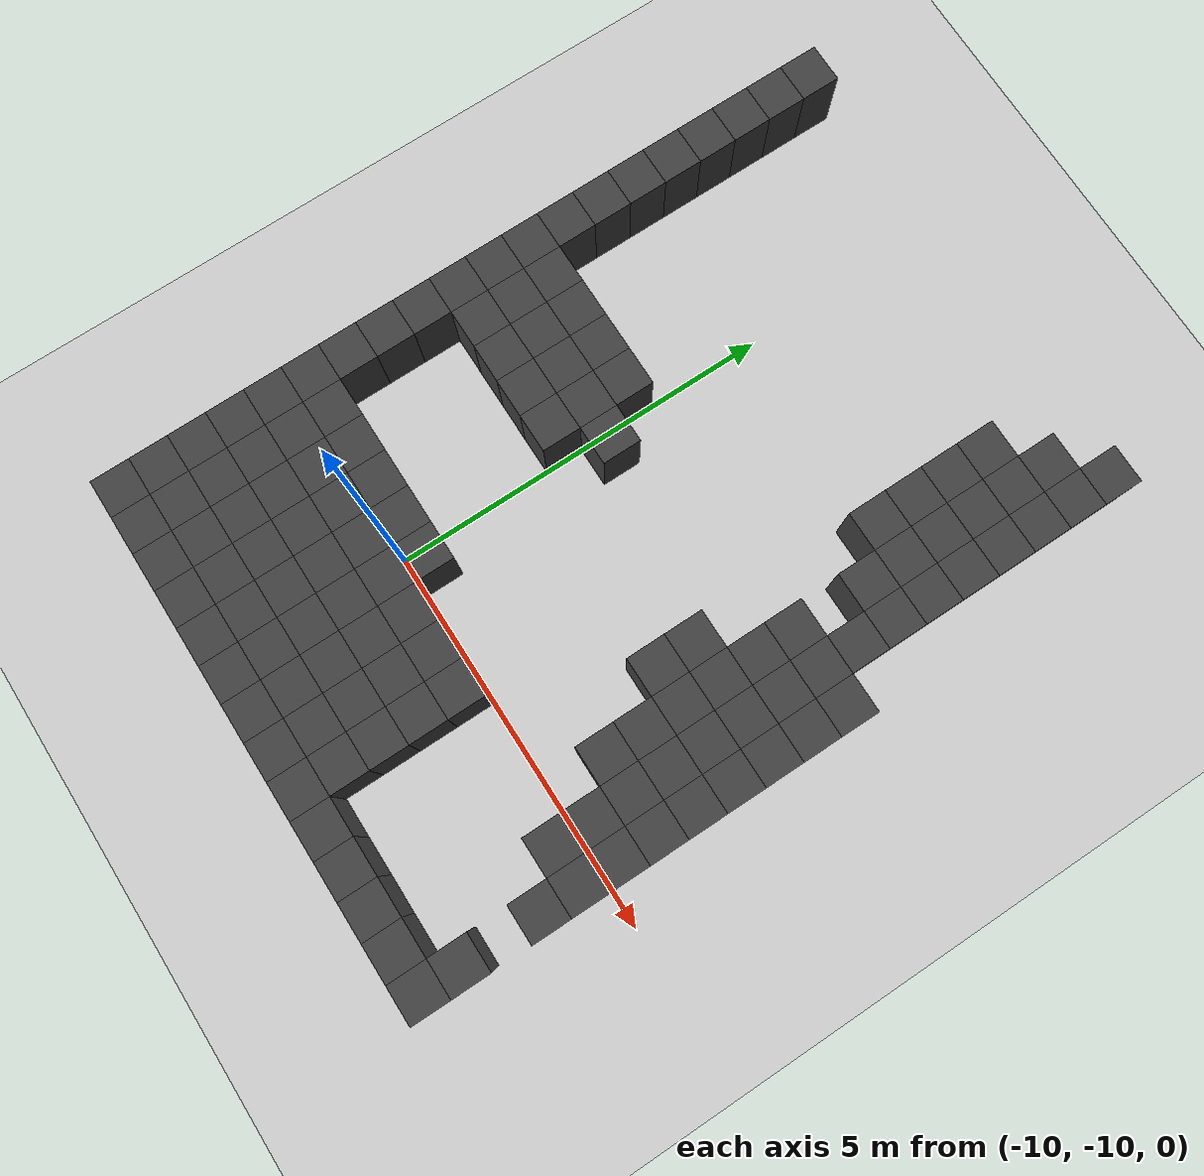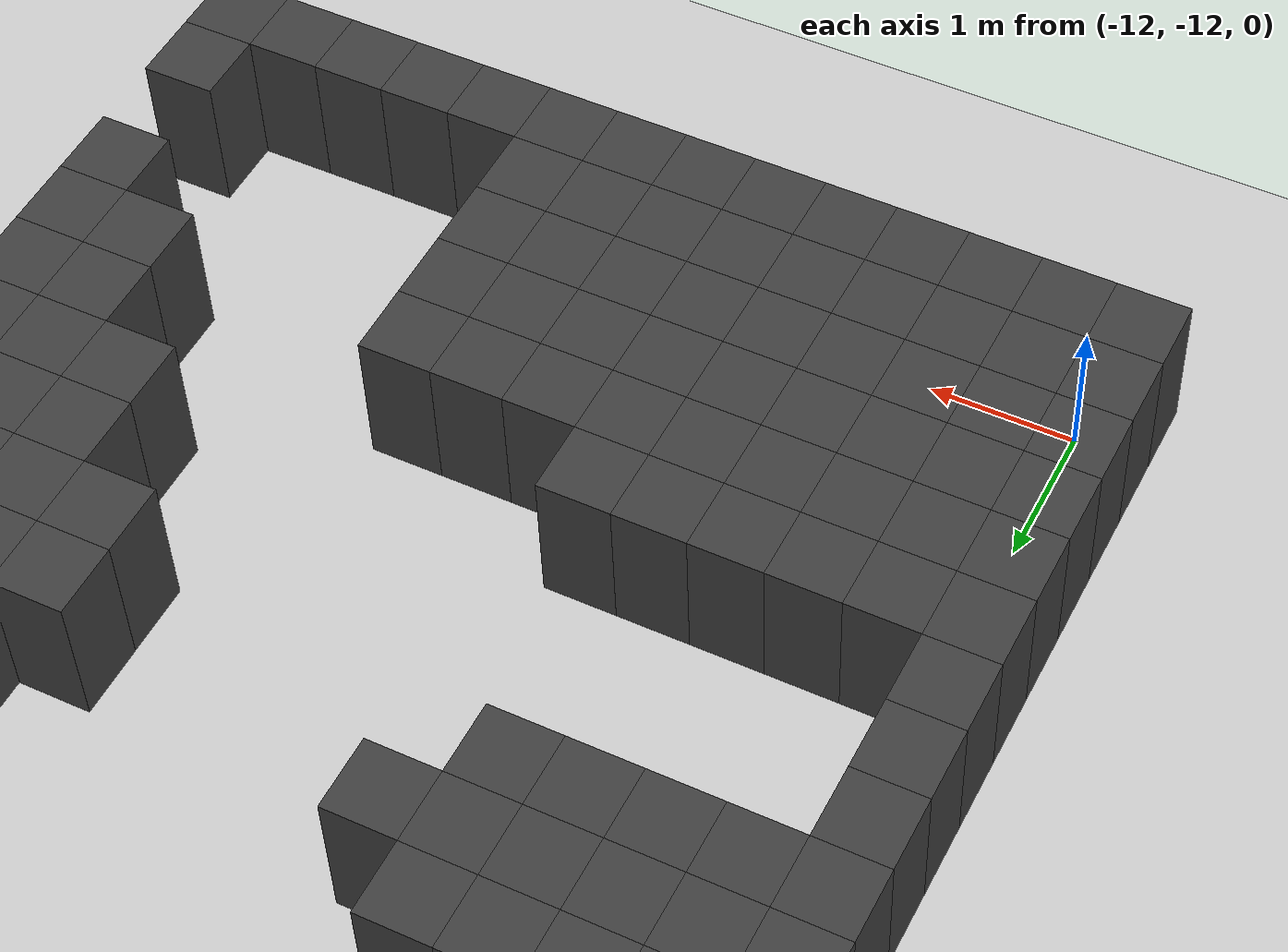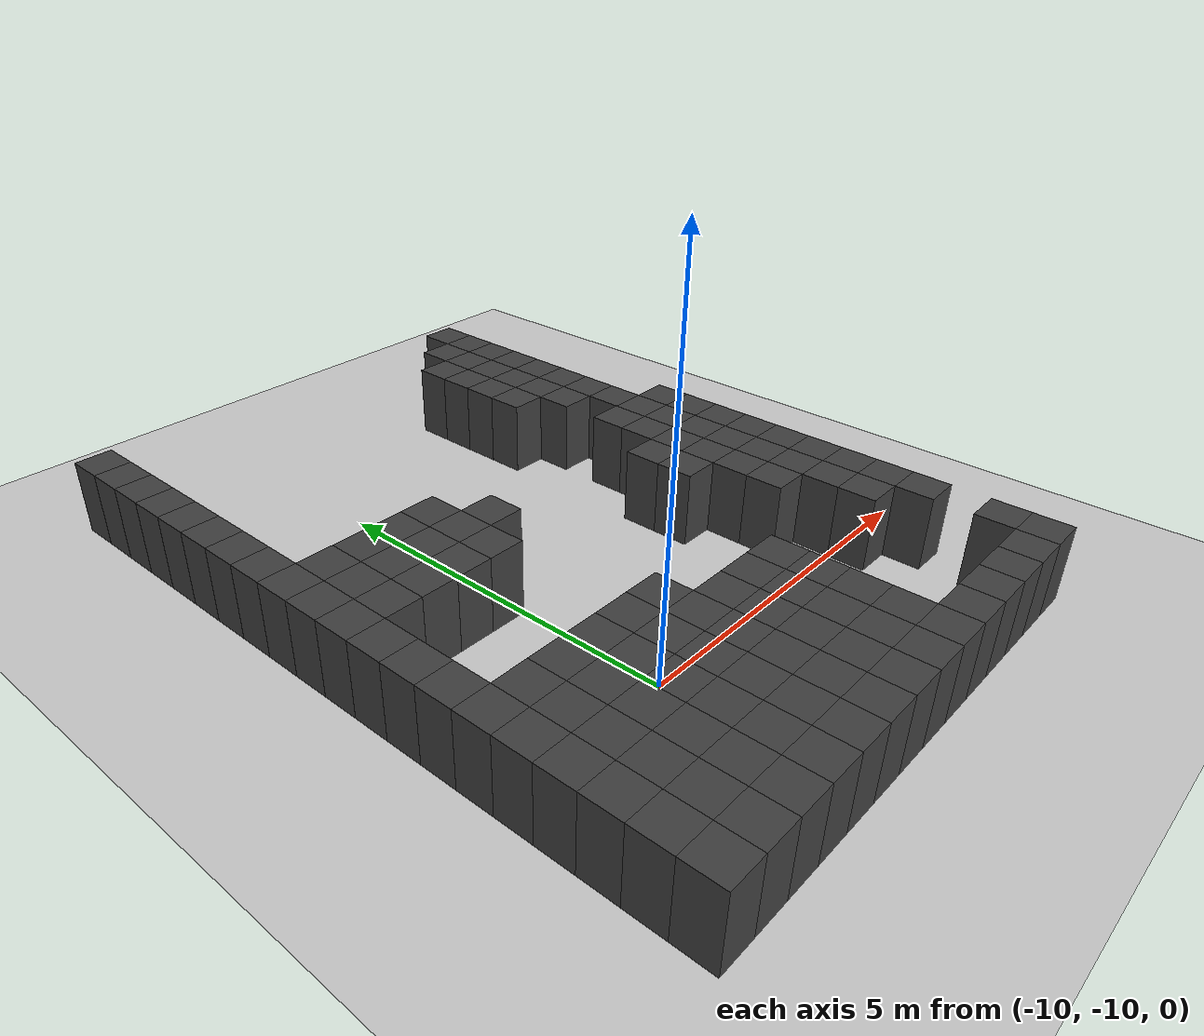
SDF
<sdf version="1.7">
 <world name="map_9544">
  <model name="ground_plane">
   <static>true</static>
   <link name="link">
    <collision name="collision">
     <geometry><plane><normal>0 0 1</normal><size>200 200</size></plane></geometry>
    </collision>
    <visual name="visual">
     <geometry><plane><normal>0 0 1</normal><size>200 200</size></plane></geometry>
     <material><ambient>0.8 0.8 0.8 1</ambient><diffuse>0.8 0.8 0.8 1</diffuse></material>
    </visual>
   </link>
  </model>
  <model name="maze_environment">
   <static>true</static>
   <link name="wall_499">
    <pose>-12.250 -2.750 0.500 0 0 0</pose>
    <collision name="col"><geometry><box><size>0.5 0.5 1.0</size></box></geometry></collision>
    <visual name="vis">
     <geometry><box><size>0.5 0.5 1.0</size></box></geometry>
     <material><ambient>0.15 0.15 0.15 1</ambient><diffuse>0.25 0.25 0.25 1</diffuse></material>
    </visual>
   </link>
   <link name="wall_500">
    <pose>-6.250 -2.750 0.500 0 0 0</pose>
    <collision name="col"><geometry><box><size>0.5 0.5 1.0</size></box></geometry></collision>
    <visual name="vis">
     <geometry><box><size>0.5 0.5 1.0</size></box></geometry>
     <material><ambient>0.15 0.15 0.15 1</ambient><diffuse>0.25 0.25 0.25 1</diffuse></material>
    </visual>
   </link>
   <link name="wall_516">
    <pose>-12.250 -3.250 0.500 0 0 0</pose>
    <collision name="col"><geometry><box><size>0.5 0.5 1.0</size></box></geometry></collision>
    <visual name="vis">
     <geometry><box><size>0.5 0.5 1.0</size></box></geometry>
     <material><ambient>0.15 0.15 0.15 1</ambient><diffuse>0.25 0.25 0.25 1</diffuse></material>
    </visual>
   </link>
   <link name="wall_517">
    <pose>-6.750 -3.250 0.500 0 0 0</pose>
    <collision name="col"><geometry><box><size>0.5 0.5 1.0</size></box></geometry></collision>
    <visual name="vis">
     <geometry><box><size>0.5 0.5 1.0</size></box></geometry>
     <material><ambient>0.15 0.15 0.15 1</ambient><diffuse>0.25 0.25 0.25 1</diffuse></material>
    </visual>
   </link>
   <link name="wall_518">
    <pose>-6.250 -3.250 0.500 0 0 0</pose>
    <collision name="col"><geometry><box><size>0.5 0.5 1.0</size></box></geometry></collision>
    <visual name="vis">
     <geometry><box><size>0.5 0.5 1.0</size></box></geometry>
     <material><ambient>0.15 0.15 0.15 1</ambient><diffuse>0.25 0.25 0.25 1</diffuse></material>
    </visual>
   </link>
   <link name="wall_537">
    <pose>-12.250 -3.750 0.500 0 0 0</pose>
    <collision name="col"><geometry><box><size>0.5 0.5 1.0</size></box></geometry></collision>
    <visual name="vis">
     <geometry><box><size>0.5 0.5 1.0</size></box></geometry>
     <material><ambient>0.15 0.15 0.15 1</ambient><diffuse>0.25 0.25 0.25 1</diffuse></material>
    </visual>
   </link>
   <link name="wall_538">
    <pose>-7.250 -3.750 0.500 0 0 0</pose>
    <collision name="col"><geometry><box><size>0.5 0.5 1.0</size></box></geometry></collision>
    <visual name="vis">
     <geometry><box><size>0.5 0.5 1.0</size></box></geometry>
     <material><ambient>0.15 0.15 0.15 1</ambient><diffuse>0.25 0.25 0.25 1</diffuse></material>
    </visual>
   </link>
   <link name="wall_539">
    <pose>-6.750 -3.750 0.500 0 0 0</pose>
    <collision name="col"><geometry><box><size>0.5 0.5 1.0</size></box></geometry></collision>
    <visual name="vis">
     <geometry><box><size>0.5 0.5 1.0</size></box></geometry>
     <material><ambient>0.15 0.15 0.15 1</ambient><diffuse>0.25 0.25 0.25 1</diffuse></material>
    </visual>
   </link>
   <link name="wall_540">
    <pose>-6.250 -3.750 0.500 0 0 0</pose>
    <collision name="col"><geometry><box><size>0.5 0.5 1.0</size></box></geometry></collision>
    <visual name="vis">
     <geometry><box><size>0.5 0.5 1.0</size></box></geometry>
     <material><ambient>0.15 0.15 0.15 1</ambient><diffuse>0.25 0.25 0.25 1</diffuse></material>
    </visual>
   </link>
   <link name="wall_560">
    <pose>-12.250 -4.250 0.500 0 0 0</pose>
    <collision name="col"><geometry><box><size>0.5 0.5 1.0</size></box></geometry></collision>
    <visual name="vis">
     <geometry><box><size>0.5 0.5 1.0</size></box></geometry>
     <material><ambient>0.15 0.15 0.15 1</ambient><diffuse>0.25 0.25 0.25 1</diffuse></material>
    </visual>
   </link>
   <link name="wall_561">
    <pose>-7.250 -4.250 0.500 0 0 0</pose>
    <collision name="col"><geometry><box><size>0.5 0.5 1.0</size></box></geometry></collision>
    <visual name="vis">
     <geometry><box><size>0.5 0.5 1.0</size></box></geometry>
     <material><ambient>0.15 0.15 0.15 1</ambient><diffuse>0.25 0.25 0.25 1</diffuse></material>
    </visual>
   </link>
   <link name="wall_562">
    <pose>-6.750 -4.250 0.500 0 0 0</pose>
    <collision name="col"><geometry><box><size>0.5 0.5 1.0</size></box></geometry></collision>
    <visual name="vis">
     <geometry><box><size>0.5 0.5 1.0</size></box></geometry>
     <material><ambient>0.15 0.15 0.15 1</ambient><diffuse>0.25 0.25 0.25 1</diffuse></material>
    </visual>
   </link>
   <link name="wall_563">
    <pose>-6.250 -4.250 0.500 0 0 0</pose>
    <collision name="col"><geometry><box><size>0.5 0.5 1.0</size></box></geometry></collision>
    <visual name="vis">
     <geometry><box><size>0.5 0.5 1.0</size></box></geometry>
     <material><ambient>0.15 0.15 0.15 1</ambient><diffuse>0.25 0.25 0.25 1</diffuse></material>
    </visual>
   </link>
   <link name="wall_589">
    <pose>-12.250 -4.750 0.500 0 0 0</pose>
    <collision name="col"><geometry><box><size>0.5 0.5 1.0</size></box></geometry></collision>
    <visual name="vis">
     <geometry><box><size>0.5 0.5 1.0</size></box></geometry>
     <material><ambient>0.15 0.15 0.15 1</ambient><diffuse>0.25 0.25 0.25 1</diffuse></material>
    </visual>
   </link>
   <link name="wall_590">
    <pose>-7.250 -4.750 0.500 0 0 0</pose>
    <collision name="col"><geometry><box><size>0.5 0.5 1.0</size></box></geometry></collision>
    <visual name="vis">
     <geometry><box><size>0.5 0.5 1.0</size></box></geometry>
     <material><ambient>0.15 0.15 0.15 1</ambient><diffuse>0.25 0.25 0.25 1</diffuse></material>
    </visual>
   </link>
   <link name="wall_591">
    <pose>-6.750 -4.750 0.500 0 0 0</pose>
    <collision name="col"><geometry><box><size>0.5 0.5 1.0</size></box></geometry></collision>
    <visual name="vis">
     <geometry><box><size>0.5 0.5 1.0</size></box></geometry>
     <material><ambient>0.15 0.15 0.15 1</ambient><diffuse>0.25 0.25 0.25 1</diffuse></material>
    </visual>
   </link>
   <link name="wall_592">
    <pose>-6.250 -4.750 0.500 0 0 0</pose>
    <collision name="col"><geometry><box><size>0.5 0.5 1.0</size></box></geometry></collision>
    <visual name="vis">
     <geometry><box><size>0.5 0.5 1.0</size></box></geometry>
     <material><ambient>0.15 0.15 0.15 1</ambient><diffuse>0.25 0.25 0.25 1</diffuse></material>
    </visual>
   </link>
   <link name="wall_620">
    <pose>-12.250 -5.250 0.500 0 0 0</pose>
    <collision name="col"><geometry><box><size>0.5 0.5 1.0</size></box></geometry></collision>
    <visual name="vis">
     <geometry><box><size>0.5 0.5 1.0</size></box></geometry>
     <material><ambient>0.15 0.15 0.15 1</ambient><diffuse>0.25 0.25 0.25 1</diffuse></material>
    </visual>
   </link>
   <link name="wall_621">
    <pose>-7.250 -5.250 0.500 0 0 0</pose>
    <collision name="col"><geometry><box><size>0.5 0.5 1.0</size></box></geometry></collision>
    <visual name="vis">
     <geometry><box><size>0.5 0.5 1.0</size></box></geometry>
     <material><ambient>0.15 0.15 0.15 1</ambient><diffuse>0.25 0.25 0.25 1</diffuse></material>
    </visual>
   </link>
   <link name="wall_622">
    <pose>-6.750 -5.250 0.500 0 0 0</pose>
    <collision name="col"><geometry><box><size>0.5 0.5 1.0</size></box></geometry></collision>
    <visual name="vis">
     <geometry><box><size>0.5 0.5 1.0</size></box></geometry>
     <material><ambient>0.15 0.15 0.15 1</ambient><diffuse>0.25 0.25 0.25 1</diffuse></material>
    </visual>
   </link>
   <link name="wall_623">
    <pose>-6.250 -5.250 0.500 0 0 0</pose>
    <collision name="col"><geometry><box><size>0.5 0.5 1.0</size></box></geometry></collision>
    <visual name="vis">
     <geometry><box><size>0.5 0.5 1.0</size></box></geometry>
     <material><ambient>0.15 0.15 0.15 1</ambient><diffuse>0.25 0.25 0.25 1</diffuse></material>
    </visual>
   </link>
   <link name="wall_646">
    <pose>-12.250 -5.750 0.500 0 0 0</pose>
    <collision name="col"><geometry><box><size>0.5 0.5 1.0</size></box></geometry></collision>
    <visual name="vis">
     <geometry><box><size>0.5 0.5 1.0</size></box></geometry>
     <material><ambient>0.15 0.15 0.15 1</ambient><diffuse>0.25 0.25 0.25 1</diffuse></material>
    </visual>
   </link>
   <link name="wall_647">
    <pose>-6.750 -5.750 0.500 0 0 0</pose>
    <collision name="col"><geometry><box><size>0.5 0.5 1.0</size></box></geometry></collision>
    <visual name="vis">
     <geometry><box><size>0.5 0.5 1.0</size></box></geometry>
     <material><ambient>0.15 0.15 0.15 1</ambient><diffuse>0.25 0.25 0.25 1</diffuse></material>
    </visual>
   </link>
   <link name="wall_648">
    <pose>-6.250 -5.750 0.500 0 0 0</pose>
    <collision name="col"><geometry><box><size>0.5 0.5 1.0</size></box></geometry></collision>
    <visual name="vis">
     <geometry><box><size>0.5 0.5 1.0</size></box></geometry>
     <material><ambient>0.15 0.15 0.15 1</ambient><diffuse>0.25 0.25 0.25 1</diffuse></material>
    </visual>
   </link>
   <link name="wall_671">
    <pose>-12.250 -6.250 0.500 0 0 0</pose>
    <collision name="col"><geometry><box><size>0.5 0.5 1.0</size></box></geometry></collision>
    <visual name="vis">
     <geometry><box><size>0.5 0.5 1.0</size></box></geometry>
     <material><ambient>0.15 0.15 0.15 1</ambient><diffuse>0.25 0.25 0.25 1</diffuse></material>
    </visual>
   </link>
   <link name="wall_672">
    <pose>-6.250 -6.250 0.500 0 0 0</pose>
    <collision name="col"><geometry><box><size>0.5 0.5 1.0</size></box></geometry></collision>
    <visual name="vis">
     <geometry><box><size>0.5 0.5 1.0</size></box></geometry>
     <material><ambient>0.15 0.15 0.15 1</ambient><diffuse>0.25 0.25 0.25 1</diffuse></material>
    </visual>
   </link>
   <link name="wall_701">
    <pose>-12.250 -6.750 0.500 0 0 0</pose>
    <collision name="col"><geometry><box><size>0.5 0.5 1.0</size></box></geometry></collision>
    <visual name="vis">
     <geometry><box><size>0.5 0.5 1.0</size></box></geometry>
     <material><ambient>0.15 0.15 0.15 1</ambient><diffuse>0.25 0.25 0.25 1</diffuse></material>
    </visual>
   </link>
   <link name="wall_702">
    <pose>-11.750 -6.750 0.500 0 0 0</pose>
    <collision name="col"><geometry><box><size>0.5 0.5 1.0</size></box></geometry></collision>
    <visual name="vis">
     <geometry><box><size>0.5 0.5 1.0</size></box></geometry>
     <material><ambient>0.15 0.15 0.15 1</ambient><diffuse>0.25 0.25 0.25 1</diffuse></material>
    </visual>
   </link>
   <link name="wall_703">
    <pose>-11.250 -6.750 0.500 0 0 0</pose>
    <collision name="col"><geometry><box><size>0.5 0.5 1.0</size></box></geometry></collision>
    <visual name="vis">
     <geometry><box><size>0.5 0.5 1.0</size></box></geometry>
     <material><ambient>0.15 0.15 0.15 1</ambient><diffuse>0.25 0.25 0.25 1</diffuse></material>
    </visual>
   </link>
   <link name="wall_704">
    <pose>-10.750 -6.750 0.500 0 0 0</pose>
    <collision name="col"><geometry><box><size>0.5 0.5 1.0</size></box></geometry></collision>
    <visual name="vis">
     <geometry><box><size>0.5 0.5 1.0</size></box></geometry>
     <material><ambient>0.15 0.15 0.15 1</ambient><diffuse>0.25 0.25 0.25 1</diffuse></material>
    </visual>
   </link>
   <link name="wall_705">
    <pose>-10.250 -6.750 0.500 0 0 0</pose>
    <collision name="col"><geometry><box><size>0.5 0.5 1.0</size></box></geometry></collision>
    <visual name="vis">
     <geometry><box><size>0.5 0.5 1.0</size></box></geometry>
     <material><ambient>0.15 0.15 0.15 1</ambient><diffuse>0.25 0.25 0.25 1</diffuse></material>
    </visual>
   </link>
   <link name="wall_706">
    <pose>-6.750 -6.750 0.500 0 0 0</pose>
    <collision name="col"><geometry><box><size>0.5 0.5 1.0</size></box></geometry></collision>
    <visual name="vis">
     <geometry><box><size>0.5 0.5 1.0</size></box></geometry>
     <material><ambient>0.15 0.15 0.15 1</ambient><diffuse>0.25 0.25 0.25 1</diffuse></material>
    </visual>
   </link>
   <link name="wall_707">
    <pose>-6.250 -6.750 0.500 0 0 0</pose>
    <collision name="col"><geometry><box><size>0.5 0.5 1.0</size></box></geometry></collision>
    <visual name="vis">
     <geometry><box><size>0.5 0.5 1.0</size></box></geometry>
     <material><ambient>0.15 0.15 0.15 1</ambient><diffuse>0.25 0.25 0.25 1</diffuse></material>
    </visual>
   </link>
   <link name="wall_708">
    <pose>-5.750 -6.750 0.500 0 0 0</pose>
    <collision name="col"><geometry><box><size>0.5 0.5 1.0</size></box></geometry></collision>
    <visual name="vis">
     <geometry><box><size>0.5 0.5 1.0</size></box></geometry>
     <material><ambient>0.15 0.15 0.15 1</ambient><diffuse>0.25 0.25 0.25 1</diffuse></material>
    </visual>
   </link>
   <link name="wall_736">
    <pose>-12.250 -7.250 0.500 0 0 0</pose>
    <collision name="col"><geometry><box><size>0.5 0.5 1.0</size></box></geometry></collision>
    <visual name="vis">
     <geometry><box><size>0.5 0.5 1.0</size></box></geometry>
     <material><ambient>0.15 0.15 0.15 1</ambient><diffuse>0.25 0.25 0.25 1</diffuse></material>
    </visual>
   </link>
   <link name="wall_737">
    <pose>-11.750 -7.250 0.500 0 0 0</pose>
    <collision name="col"><geometry><box><size>0.5 0.5 1.0</size></box></geometry></collision>
    <visual name="vis">
     <geometry><box><size>0.5 0.5 1.0</size></box></geometry>
     <material><ambient>0.15 0.15 0.15 1</ambient><diffuse>0.25 0.25 0.25 1</diffuse></material>
    </visual>
   </link>
   <link name="wall_738">
    <pose>-11.250 -7.250 0.500 0 0 0</pose>
    <collision name="col"><geometry><box><size>0.5 0.5 1.0</size></box></geometry></collision>
    <visual name="vis">
     <geometry><box><size>0.5 0.5 1.0</size></box></geometry>
     <material><ambient>0.15 0.15 0.15 1</ambient><diffuse>0.25 0.25 0.25 1</diffuse></material>
    </visual>
   </link>
   <link name="wall_739">
    <pose>-10.750 -7.250 0.500 0 0 0</pose>
    <collision name="col"><geometry><box><size>0.5 0.5 1.0</size></box></geometry></collision>
    <visual name="vis">
     <geometry><box><size>0.5 0.5 1.0</size></box></geometry>
     <material><ambient>0.15 0.15 0.15 1</ambient><diffuse>0.25 0.25 0.25 1</diffuse></material>
    </visual>
   </link>
   <link name="wall_740">
    <pose>-10.250 -7.250 0.500 0 0 0</pose>
    <collision name="col"><geometry><box><size>0.5 0.5 1.0</size></box></geometry></collision>
    <visual name="vis">
     <geometry><box><size>0.5 0.5 1.0</size></box></geometry>
     <material><ambient>0.15 0.15 0.15 1</ambient><diffuse>0.25 0.25 0.25 1</diffuse></material>
    </visual>
   </link>
   <link name="wall_741">
    <pose>-9.750 -7.250 0.500 0 0 0</pose>
    <collision name="col"><geometry><box><size>0.5 0.5 1.0</size></box></geometry></collision>
    <visual name="vis">
     <geometry><box><size>0.5 0.5 1.0</size></box></geometry>
     <material><ambient>0.15 0.15 0.15 1</ambient><diffuse>0.25 0.25 0.25 1</diffuse></material>
    </visual>
   </link>
   <link name="wall_742">
    <pose>-6.750 -7.250 0.500 0 0 0</pose>
    <collision name="col"><geometry><box><size>0.5 0.5 1.0</size></box></geometry></collision>
    <visual name="vis">
     <geometry><box><size>0.5 0.5 1.0</size></box></geometry>
     <material><ambient>0.15 0.15 0.15 1</ambient><diffuse>0.25 0.25 0.25 1</diffuse></material>
    </visual>
   </link>
   <link name="wall_743">
    <pose>-6.250 -7.250 0.500 0 0 0</pose>
    <collision name="col"><geometry><box><size>0.5 0.5 1.0</size></box></geometry></collision>
    <visual name="vis">
     <geometry><box><size>0.5 0.5 1.0</size></box></geometry>
     <material><ambient>0.15 0.15 0.15 1</ambient><diffuse>0.25 0.25 0.25 1</diffuse></material>
    </visual>
   </link>
   <link name="wall_744">
    <pose>-5.750 -7.250 0.500 0 0 0</pose>
    <collision name="col"><geometry><box><size>0.5 0.5 1.0</size></box></geometry></collision>
    <visual name="vis">
     <geometry><box><size>0.5 0.5 1.0</size></box></geometry>
     <material><ambient>0.15 0.15 0.15 1</ambient><diffuse>0.25 0.25 0.25 1</diffuse></material>
    </visual>
   </link>
   <link name="wall_769">
    <pose>-12.250 -7.750 0.500 0 0 0</pose>
    <collision name="col"><geometry><box><size>0.5 0.5 1.0</size></box></geometry></collision>
    <visual name="vis">
     <geometry><box><size>0.5 0.5 1.0</size></box></geometry>
     <material><ambient>0.15 0.15 0.15 1</ambient><diffuse>0.25 0.25 0.25 1</diffuse></material>
    </visual>
   </link>
   <link name="wall_770">
    <pose>-11.750 -7.750 0.500 0 0 0</pose>
    <collision name="col"><geometry><box><size>0.5 0.5 1.0</size></box></geometry></collision>
    <visual name="vis">
     <geometry><box><size>0.5 0.5 1.0</size></box></geometry>
     <material><ambient>0.15 0.15 0.15 1</ambient><diffuse>0.25 0.25 0.25 1</diffuse></material>
    </visual>
   </link>
   <link name="wall_771">
    <pose>-11.250 -7.750 0.500 0 0 0</pose>
    <collision name="col"><geometry><box><size>0.5 0.5 1.0</size></box></geometry></collision>
    <visual name="vis">
     <geometry><box><size>0.5 0.5 1.0</size></box></geometry>
     <material><ambient>0.15 0.15 0.15 1</ambient><diffuse>0.25 0.25 0.25 1</diffuse></material>
    </visual>
   </link>
   <link name="wall_772">
    <pose>-10.750 -7.750 0.500 0 0 0</pose>
    <collision name="col"><geometry><box><size>0.5 0.5 1.0</size></box></geometry></collision>
    <visual name="vis">
     <geometry><box><size>0.5 0.5 1.0</size></box></geometry>
     <material><ambient>0.15 0.15 0.15 1</ambient><diffuse>0.25 0.25 0.25 1</diffuse></material>
    </visual>
   </link>
   <link name="wall_773">
    <pose>-10.250 -7.750 0.500 0 0 0</pose>
    <collision name="col"><geometry><box><size>0.5 0.5 1.0</size></box></geometry></collision>
    <visual name="vis">
     <geometry><box><size>0.5 0.5 1.0</size></box></geometry>
     <material><ambient>0.15 0.15 0.15 1</ambient><diffuse>0.25 0.25 0.25 1</diffuse></material>
    </visual>
   </link>
   <link name="wall_774">
    <pose>-7.250 -7.750 0.500 0 0 0</pose>
    <collision name="col"><geometry><box><size>0.5 0.5 1.0</size></box></geometry></collision>
    <visual name="vis">
     <geometry><box><size>0.5 0.5 1.0</size></box></geometry>
     <material><ambient>0.15 0.15 0.15 1</ambient><diffuse>0.25 0.25 0.25 1</diffuse></material>
    </visual>
   </link>
   <link name="wall_775">
    <pose>-6.750 -7.750 0.500 0 0 0</pose>
    <collision name="col"><geometry><box><size>0.5 0.5 1.0</size></box></geometry></collision>
    <visual name="vis">
     <geometry><box><size>0.5 0.5 1.0</size></box></geometry>
     <material><ambient>0.15 0.15 0.15 1</ambient><diffuse>0.25 0.25 0.25 1</diffuse></material>
    </visual>
   </link>
   <link name="wall_776">
    <pose>-6.250 -7.750 0.500 0 0 0</pose>
    <collision name="col"><geometry><box><size>0.5 0.5 1.0</size></box></geometry></collision>
    <visual name="vis">
     <geometry><box><size>0.5 0.5 1.0</size></box></geometry>
     <material><ambient>0.15 0.15 0.15 1</ambient><diffuse>0.25 0.25 0.25 1</diffuse></material>
    </visual>
   </link>
   <link name="wall_777">
    <pose>-5.750 -7.750 0.500 0 0 0</pose>
    <collision name="col"><geometry><box><size>0.5 0.5 1.0</size></box></geometry></collision>
    <visual name="vis">
     <geometry><box><size>0.5 0.5 1.0</size></box></geometry>
     <material><ambient>0.15 0.15 0.15 1</ambient><diffuse>0.25 0.25 0.25 1</diffuse></material>
    </visual>
   </link>
   <link name="wall_797">
    <pose>-12.250 -8.250 0.500 0 0 0</pose>
    <collision name="col"><geometry><box><size>0.5 0.5 1.0</size></box></geometry></collision>
    <visual name="vis">
     <geometry><box><size>0.5 0.5 1.0</size></box></geometry>
     <material><ambient>0.15 0.15 0.15 1</ambient><diffuse>0.25 0.25 0.25 1</diffuse></material>
    </visual>
   </link>
   <link name="wall_798">
    <pose>-7.250 -8.250 0.500 0 0 0</pose>
    <collision name="col"><geometry><box><size>0.5 0.5 1.0</size></box></geometry></collision>
    <visual name="vis">
     <geometry><box><size>0.5 0.5 1.0</size></box></geometry>
     <material><ambient>0.15 0.15 0.15 1</ambient><diffuse>0.25 0.25 0.25 1</diffuse></material>
    </visual>
   </link>
   <link name="wall_799">
    <pose>-6.750 -8.250 0.500 0 0 0</pose>
    <collision name="col"><geometry><box><size>0.5 0.5 1.0</size></box></geometry></collision>
    <visual name="vis">
     <geometry><box><size>0.5 0.5 1.0</size></box></geometry>
     <material><ambient>0.15 0.15 0.15 1</ambient><diffuse>0.25 0.25 0.25 1</diffuse></material>
    </visual>
   </link>
   <link name="wall_800">
    <pose>-6.250 -8.250 0.500 0 0 0</pose>
    <collision name="col"><geometry><box><size>0.5 0.5 1.0</size></box></geometry></collision>
    <visual name="vis">
     <geometry><box><size>0.5 0.5 1.0</size></box></geometry>
     <material><ambient>0.15 0.15 0.15 1</ambient><diffuse>0.25 0.25 0.25 1</diffuse></material>
    </visual>
   </link>
   <link name="wall_801">
    <pose>-5.750 -8.250 0.500 0 0 0</pose>
    <collision name="col"><geometry><box><size>0.5 0.5 1.0</size></box></geometry></collision>
    <visual name="vis">
     <geometry><box><size>0.5 0.5 1.0</size></box></geometry>
     <material><ambient>0.15 0.15 0.15 1</ambient><diffuse>0.25 0.25 0.25 1</diffuse></material>
    </visual>
   </link>
   <link name="wall_818">
    <pose>-12.250 -8.750 0.500 0 0 0</pose>
    <collision name="col"><geometry><box><size>0.5 0.5 1.0</size></box></geometry></collision>
    <visual name="vis">
     <geometry><box><size>0.5 0.5 1.0</size></box></geometry>
     <material><ambient>0.15 0.15 0.15 1</ambient><diffuse>0.25 0.25 0.25 1</diffuse></material>
    </visual>
   </link>
   <link name="wall_819">
    <pose>-6.750 -8.750 0.500 0 0 0</pose>
    <collision name="col"><geometry><box><size>0.5 0.5 1.0</size></box></geometry></collision>
    <visual name="vis">
     <geometry><box><size>0.5 0.5 1.0</size></box></geometry>
     <material><ambient>0.15 0.15 0.15 1</ambient><diffuse>0.25 0.25 0.25 1</diffuse></material>
    </visual>
   </link>
   <link name="wall_820">
    <pose>-6.250 -8.750 0.500 0 0 0</pose>
    <collision name="col"><geometry><box><size>0.5 0.5 1.0</size></box></geometry></collision>
    <visual name="vis">
     <geometry><box><size>0.5 0.5 1.0</size></box></geometry>
     <material><ambient>0.15 0.15 0.15 1</ambient><diffuse>0.25 0.25 0.25 1</diffuse></material>
    </visual>
   </link>
   <link name="wall_821">
    <pose>-5.750 -8.750 0.500 0 0 0</pose>
    <collision name="col"><geometry><box><size>0.5 0.5 1.0</size></box></geometry></collision>
    <visual name="vis">
     <geometry><box><size>0.5 0.5 1.0</size></box></geometry>
     <material><ambient>0.15 0.15 0.15 1</ambient><diffuse>0.25 0.25 0.25 1</diffuse></material>
    </visual>
   </link>
   <link name="wall_838">
    <pose>-12.250 -9.250 0.500 0 0 0</pose>
    <collision name="col"><geometry><box><size>0.5 0.5 1.0</size></box></geometry></collision>
    <visual name="vis">
     <geometry><box><size>0.5 0.5 1.0</size></box></geometry>
     <material><ambient>0.15 0.15 0.15 1</ambient><diffuse>0.25 0.25 0.25 1</diffuse></material>
    </visual>
   </link>
   <link name="wall_839">
    <pose>-6.750 -9.250 0.500 0 0 0</pose>
    <collision name="col"><geometry><box><size>0.5 0.5 1.0</size></box></geometry></collision>
    <visual name="vis">
     <geometry><box><size>0.5 0.5 1.0</size></box></geometry>
     <material><ambient>0.15 0.15 0.15 1</ambient><diffuse>0.25 0.25 0.25 1</diffuse></material>
    </visual>
   </link>
   <link name="wall_840">
    <pose>-6.250 -9.250 0.500 0 0 0</pose>
    <collision name="col"><geometry><box><size>0.5 0.5 1.0</size></box></geometry></collision>
    <visual name="vis">
     <geometry><box><size>0.5 0.5 1.0</size></box></geometry>
     <material><ambient>0.15 0.15 0.15 1</ambient><diffuse>0.25 0.25 0.25 1</diffuse></material>
    </visual>
   </link>
   <link name="wall_841">
    <pose>-5.750 -9.250 0.500 0 0 0</pose>
    <collision name="col"><geometry><box><size>0.5 0.5 1.0</size></box></geometry></collision>
    <visual name="vis">
     <geometry><box><size>0.5 0.5 1.0</size></box></geometry>
     <material><ambient>0.15 0.15 0.15 1</ambient><diffuse>0.25 0.25 0.25 1</diffuse></material>
    </visual>
   </link>
   <link name="wall_861">
    <pose>-12.250 -9.750 0.500 0 0 0</pose>
    <collision name="col"><geometry><box><size>0.5 0.5 1.0</size></box></geometry></collision>
    <visual name="vis">
     <geometry><box><size>0.5 0.5 1.0</size></box></geometry>
     <material><ambient>0.15 0.15 0.15 1</ambient><diffuse>0.25 0.25 0.25 1</diffuse></material>
    </visual>
   </link>
   <link name="wall_862">
    <pose>-11.750 -9.750 0.500 0 0 0</pose>
    <collision name="col"><geometry><box><size>0.5 0.5 1.0</size></box></geometry></collision>
    <visual name="vis">
     <geometry><box><size>0.5 0.5 1.0</size></box></geometry>
     <material><ambient>0.15 0.15 0.15 1</ambient><diffuse>0.25 0.25 0.25 1</diffuse></material>
    </visual>
   </link>
   <link name="wall_863">
    <pose>-11.250 -9.750 0.500 0 0 0</pose>
    <collision name="col"><geometry><box><size>0.5 0.5 1.0</size></box></geometry></collision>
    <visual name="vis">
     <geometry><box><size>0.5 0.5 1.0</size></box></geometry>
     <material><ambient>0.15 0.15 0.15 1</ambient><diffuse>0.25 0.25 0.25 1</diffuse></material>
    </visual>
   </link>
   <link name="wall_864">
    <pose>-10.750 -9.750 0.500 0 0 0</pose>
    <collision name="col"><geometry><box><size>0.5 0.5 1.0</size></box></geometry></collision>
    <visual name="vis">
     <geometry><box><size>0.5 0.5 1.0</size></box></geometry>
     <material><ambient>0.15 0.15 0.15 1</ambient><diffuse>0.25 0.25 0.25 1</diffuse></material>
    </visual>
   </link>
   <link name="wall_865">
    <pose>-10.250 -9.750 0.500 0 0 0</pose>
    <collision name="col"><geometry><box><size>0.5 0.5 1.0</size></box></geometry></collision>
    <visual name="vis">
     <geometry><box><size>0.5 0.5 1.0</size></box></geometry>
     <material><ambient>0.15 0.15 0.15 1</ambient><diffuse>0.25 0.25 0.25 1</diffuse></material>
    </visual>
   </link>
   <link name="wall_866">
    <pose>-9.750 -9.750 0.500 0 0 0</pose>
    <collision name="col"><geometry><box><size>0.5 0.5 1.0</size></box></geometry></collision>
    <visual name="vis">
     <geometry><box><size>0.5 0.5 1.0</size></box></geometry>
     <material><ambient>0.15 0.15 0.15 1</ambient><diffuse>0.25 0.25 0.25 1</diffuse></material>
    </visual>
   </link>
   <link name="wall_867">
    <pose>-6.250 -9.750 0.500 0 0 0</pose>
    <collision name="col"><geometry><box><size>0.5 0.5 1.0</size></box></geometry></collision>
    <visual name="vis">
     <geometry><box><size>0.5 0.5 1.0</size></box></geometry>
     <material><ambient>0.15 0.15 0.15 1</ambient><diffuse>0.25 0.25 0.25 1</diffuse></material>
    </visual>
   </link>
   <link name="wall_868">
    <pose>-5.750 -9.750 0.500 0 0 0</pose>
    <collision name="col"><geometry><box><size>0.5 0.5 1.0</size></box></geometry></collision>
    <visual name="vis">
     <geometry><box><size>0.5 0.5 1.0</size></box></geometry>
     <material><ambient>0.15 0.15 0.15 1</ambient><diffuse>0.25 0.25 0.25 1</diffuse></material>
    </visual>
   </link>
   <link name="wall_887">
    <pose>-12.250 -10.250 0.500 0 0 0</pose>
    <collision name="col"><geometry><box><size>0.5 0.5 1.0</size></box></geometry></collision>
    <visual name="vis">
     <geometry><box><size>0.5 0.5 1.0</size></box></geometry>
     <material><ambient>0.15 0.15 0.15 1</ambient><diffuse>0.25 0.25 0.25 1</diffuse></material>
    </visual>
   </link>
   <link name="wall_888">
    <pose>-11.750 -10.250 0.500 0 0 0</pose>
    <collision name="col"><geometry><box><size>0.5 0.5 1.0</size></box></geometry></collision>
    <visual name="vis">
     <geometry><box><size>0.5 0.5 1.0</size></box></geometry>
     <material><ambient>0.15 0.15 0.15 1</ambient><diffuse>0.25 0.25 0.25 1</diffuse></material>
    </visual>
   </link>
   <link name="wall_889">
    <pose>-11.250 -10.250 0.500 0 0 0</pose>
    <collision name="col"><geometry><box><size>0.5 0.5 1.0</size></box></geometry></collision>
    <visual name="vis">
     <geometry><box><size>0.5 0.5 1.0</size></box></geometry>
     <material><ambient>0.15 0.15 0.15 1</ambient><diffuse>0.25 0.25 0.25 1</diffuse></material>
    </visual>
   </link>
   <link name="wall_890">
    <pose>-10.750 -10.250 0.500 0 0 0</pose>
    <collision name="col"><geometry><box><size>0.5 0.5 1.0</size></box></geometry></collision>
    <visual name="vis">
     <geometry><box><size>0.5 0.5 1.0</size></box></geometry>
     <material><ambient>0.15 0.15 0.15 1</ambient><diffuse>0.25 0.25 0.25 1</diffuse></material>
    </visual>
   </link>
   <link name="wall_891">
    <pose>-10.250 -10.250 0.500 0 0 0</pose>
    <collision name="col"><geometry><box><size>0.5 0.5 1.0</size></box></geometry></collision>
    <visual name="vis">
     <geometry><box><size>0.5 0.5 1.0</size></box></geometry>
     <material><ambient>0.15 0.15 0.15 1</ambient><diffuse>0.25 0.25 0.25 1</diffuse></material>
    </visual>
   </link>
   <link name="wall_892">
    <pose>-9.750 -10.250 0.500 0 0 0</pose>
    <collision name="col"><geometry><box><size>0.5 0.5 1.0</size></box></geometry></collision>
    <visual name="vis">
     <geometry><box><size>0.5 0.5 1.0</size></box></geometry>
     <material><ambient>0.15 0.15 0.15 1</ambient><diffuse>0.25 0.25 0.25 1</diffuse></material>
    </visual>
   </link>
   <link name="wall_893">
    <pose>-9.250 -10.250 0.500 0 0 0</pose>
    <collision name="col"><geometry><box><size>0.5 0.5 1.0</size></box></geometry></collision>
    <visual name="vis">
     <geometry><box><size>0.5 0.5 1.0</size></box></geometry>
     <material><ambient>0.15 0.15 0.15 1</ambient><diffuse>0.25 0.25 0.25 1</diffuse></material>
    </visual>
   </link>
   <link name="wall_894">
    <pose>-8.750 -10.250 0.500 0 0 0</pose>
    <collision name="col"><geometry><box><size>0.5 0.5 1.0</size></box></geometry></collision>
    <visual name="vis">
     <geometry><box><size>0.5 0.5 1.0</size></box></geometry>
     <material><ambient>0.15 0.15 0.15 1</ambient><diffuse>0.25 0.25 0.25 1</diffuse></material>
    </visual>
   </link>
   <link name="wall_895">
    <pose>-8.250 -10.250 0.500 0 0 0</pose>
    <collision name="col"><geometry><box><size>0.5 0.5 1.0</size></box></geometry></collision>
    <visual name="vis">
     <geometry><box><size>0.5 0.5 1.0</size></box></geometry>
     <material><ambient>0.15 0.15 0.15 1</ambient><diffuse>0.25 0.25 0.25 1</diffuse></material>
    </visual>
   </link>
   <link name="wall_896">
    <pose>-6.250 -10.250 0.500 0 0 0</pose>
    <collision name="col"><geometry><box><size>0.5 0.5 1.0</size></box></geometry></collision>
    <visual name="vis">
     <geometry><box><size>0.5 0.5 1.0</size></box></geometry>
     <material><ambient>0.15 0.15 0.15 1</ambient><diffuse>0.25 0.25 0.25 1</diffuse></material>
    </visual>
   </link>
   <link name="wall_897">
    <pose>-5.750 -10.250 0.500 0 0 0</pose>
    <collision name="col"><geometry><box><size>0.5 0.5 1.0</size></box></geometry></collision>
    <visual name="vis">
     <geometry><box><size>0.5 0.5 1.0</size></box></geometry>
     <material><ambient>0.15 0.15 0.15 1</ambient><diffuse>0.25 0.25 0.25 1</diffuse></material>
    </visual>
   </link>
   <link name="wall_910">
    <pose>-12.250 -10.750 0.500 0 0 0</pose>
    <collision name="col"><geometry><box><size>0.5 0.5 1.0</size></box></geometry></collision>
    <visual name="vis">
     <geometry><box><size>0.5 0.5 1.0</size></box></geometry>
     <material><ambient>0.15 0.15 0.15 1</ambient><diffuse>0.25 0.25 0.25 1</diffuse></material>
    </visual>
   </link>
   <link name="wall_911">
    <pose>-11.750 -10.750 0.500 0 0 0</pose>
    <collision name="col"><geometry><box><size>0.5 0.5 1.0</size></box></geometry></collision>
    <visual name="vis">
     <geometry><box><size>0.5 0.5 1.0</size></box></geometry>
     <material><ambient>0.15 0.15 0.15 1</ambient><diffuse>0.25 0.25 0.25 1</diffuse></material>
    </visual>
   </link>
   <link name="wall_912">
    <pose>-11.250 -10.750 0.500 0 0 0</pose>
    <collision name="col"><geometry><box><size>0.5 0.5 1.0</size></box></geometry></collision>
    <visual name="vis">
     <geometry><box><size>0.5 0.5 1.0</size></box></geometry>
     <material><ambient>0.15 0.15 0.15 1</ambient><diffuse>0.25 0.25 0.25 1</diffuse></material>
    </visual>
   </link>
   <link name="wall_913">
    <pose>-10.750 -10.750 0.500 0 0 0</pose>
    <collision name="col"><geometry><box><size>0.5 0.5 1.0</size></box></geometry></collision>
    <visual name="vis">
     <geometry><box><size>0.5 0.5 1.0</size></box></geometry>
     <material><ambient>0.15 0.15 0.15 1</ambient><diffuse>0.25 0.25 0.25 1</diffuse></material>
    </visual>
   </link>
   <link name="wall_914">
    <pose>-10.250 -10.750 0.500 0 0 0</pose>
    <collision name="col"><geometry><box><size>0.5 0.5 1.0</size></box></geometry></collision>
    <visual name="vis">
     <geometry><box><size>0.5 0.5 1.0</size></box></geometry>
     <material><ambient>0.15 0.15 0.15 1</ambient><diffuse>0.25 0.25 0.25 1</diffuse></material>
    </visual>
   </link>
   <link name="wall_915">
    <pose>-9.750 -10.750 0.500 0 0 0</pose>
    <collision name="col"><geometry><box><size>0.5 0.5 1.0</size></box></geometry></collision>
    <visual name="vis">
     <geometry><box><size>0.5 0.5 1.0</size></box></geometry>
     <material><ambient>0.15 0.15 0.15 1</ambient><diffuse>0.25 0.25 0.25 1</diffuse></material>
    </visual>
   </link>
   <link name="wall_916">
    <pose>-9.250 -10.750 0.500 0 0 0</pose>
    <collision name="col"><geometry><box><size>0.5 0.5 1.0</size></box></geometry></collision>
    <visual name="vis">
     <geometry><box><size>0.5 0.5 1.0</size></box></geometry>
     <material><ambient>0.15 0.15 0.15 1</ambient><diffuse>0.25 0.25 0.25 1</diffuse></material>
    </visual>
   </link>
   <link name="wall_917">
    <pose>-8.750 -10.750 0.500 0 0 0</pose>
    <collision name="col"><geometry><box><size>0.5 0.5 1.0</size></box></geometry></collision>
    <visual name="vis">
     <geometry><box><size>0.5 0.5 1.0</size></box></geometry>
     <material><ambient>0.15 0.15 0.15 1</ambient><diffuse>0.25 0.25 0.25 1</diffuse></material>
    </visual>
   </link>
   <link name="wall_918">
    <pose>-8.250 -10.750 0.500 0 0 0</pose>
    <collision name="col"><geometry><box><size>0.5 0.5 1.0</size></box></geometry></collision>
    <visual name="vis">
     <geometry><box><size>0.5 0.5 1.0</size></box></geometry>
     <material><ambient>0.15 0.15 0.15 1</ambient><diffuse>0.25 0.25 0.25 1</diffuse></material>
    </visual>
   </link>
   <link name="wall_919">
    <pose>-5.750 -10.750 0.500 0 0 0</pose>
    <collision name="col"><geometry><box><size>0.5 0.5 1.0</size></box></geometry></collision>
    <visual name="vis">
     <geometry><box><size>0.5 0.5 1.0</size></box></geometry>
     <material><ambient>0.15 0.15 0.15 1</ambient><diffuse>0.25 0.25 0.25 1</diffuse></material>
    </visual>
   </link>
   <link name="wall_925">
    <pose>-12.250 -11.250 0.500 0 0 0</pose>
    <collision name="col"><geometry><box><size>0.5 0.5 1.0</size></box></geometry></collision>
    <visual name="vis">
     <geometry><box><size>0.5 0.5 1.0</size></box></geometry>
     <material><ambient>0.15 0.15 0.15 1</ambient><diffuse>0.25 0.25 0.25 1</diffuse></material>
    </visual>
   </link>
   <link name="wall_926">
    <pose>-11.750 -11.250 0.500 0 0 0</pose>
    <collision name="col"><geometry><box><size>0.5 0.5 1.0</size></box></geometry></collision>
    <visual name="vis">
     <geometry><box><size>0.5 0.5 1.0</size></box></geometry>
     <material><ambient>0.15 0.15 0.15 1</ambient><diffuse>0.25 0.25 0.25 1</diffuse></material>
    </visual>
   </link>
   <link name="wall_927">
    <pose>-11.250 -11.250 0.500 0 0 0</pose>
    <collision name="col"><geometry><box><size>0.5 0.5 1.0</size></box></geometry></collision>
    <visual name="vis">
     <geometry><box><size>0.5 0.5 1.0</size></box></geometry>
     <material><ambient>0.15 0.15 0.15 1</ambient><diffuse>0.25 0.25 0.25 1</diffuse></material>
    </visual>
   </link>
   <link name="wall_928">
    <pose>-10.750 -11.250 0.500 0 0 0</pose>
    <collision name="col"><geometry><box><size>0.5 0.5 1.0</size></box></geometry></collision>
    <visual name="vis">
     <geometry><box><size>0.5 0.5 1.0</size></box></geometry>
     <material><ambient>0.15 0.15 0.15 1</ambient><diffuse>0.25 0.25 0.25 1</diffuse></material>
    </visual>
   </link>
   <link name="wall_929">
    <pose>-10.250 -11.250 0.500 0 0 0</pose>
    <collision name="col"><geometry><box><size>0.5 0.5 1.0</size></box></geometry></collision>
    <visual name="vis">
     <geometry><box><size>0.5 0.5 1.0</size></box></geometry>
     <material><ambient>0.15 0.15 0.15 1</ambient><diffuse>0.25 0.25 0.25 1</diffuse></material>
    </visual>
   </link>
   <link name="wall_930">
    <pose>-9.750 -11.250 0.500 0 0 0</pose>
    <collision name="col"><geometry><box><size>0.5 0.5 1.0</size></box></geometry></collision>
    <visual name="vis">
     <geometry><box><size>0.5 0.5 1.0</size></box></geometry>
     <material><ambient>0.15 0.15 0.15 1</ambient><diffuse>0.25 0.25 0.25 1</diffuse></material>
    </visual>
   </link>
   <link name="wall_931">
    <pose>-9.250 -11.250 0.500 0 0 0</pose>
    <collision name="col"><geometry><box><size>0.5 0.5 1.0</size></box></geometry></collision>
    <visual name="vis">
     <geometry><box><size>0.5 0.5 1.0</size></box></geometry>
     <material><ambient>0.15 0.15 0.15 1</ambient><diffuse>0.25 0.25 0.25 1</diffuse></material>
    </visual>
   </link>
   <link name="wall_932">
    <pose>-8.750 -11.250 0.500 0 0 0</pose>
    <collision name="col"><geometry><box><size>0.5 0.5 1.0</size></box></geometry></collision>
    <visual name="vis">
     <geometry><box><size>0.5 0.5 1.0</size></box></geometry>
     <material><ambient>0.15 0.15 0.15 1</ambient><diffuse>0.25 0.25 0.25 1</diffuse></material>
    </visual>
   </link>
   <link name="wall_933">
    <pose>-8.250 -11.250 0.500 0 0 0</pose>
    <collision name="col"><geometry><box><size>0.5 0.5 1.0</size></box></geometry></collision>
    <visual name="vis">
     <geometry><box><size>0.5 0.5 1.0</size></box></geometry>
     <material><ambient>0.15 0.15 0.15 1</ambient><diffuse>0.25 0.25 0.25 1</diffuse></material>
    </visual>
   </link>
   <link name="wall_939">
    <pose>-12.250 -11.750 0.500 0 0 0</pose>
    <collision name="col"><geometry><box><size>0.5 0.5 1.0</size></box></geometry></collision>
    <visual name="vis">
     <geometry><box><size>0.5 0.5 1.0</size></box></geometry>
     <material><ambient>0.15 0.15 0.15 1</ambient><diffuse>0.25 0.25 0.25 1</diffuse></material>
    </visual>
   </link>
   <link name="wall_940">
    <pose>-11.750 -11.750 0.500 0 0 0</pose>
    <collision name="col"><geometry><box><size>0.5 0.5 1.0</size></box></geometry></collision>
    <visual name="vis">
     <geometry><box><size>0.5 0.5 1.0</size></box></geometry>
     <material><ambient>0.15 0.15 0.15 1</ambient><diffuse>0.25 0.25 0.25 1</diffuse></material>
    </visual>
   </link>
   <link name="wall_941">
    <pose>-11.250 -11.750 0.500 0 0 0</pose>
    <collision name="col"><geometry><box><size>0.5 0.5 1.0</size></box></geometry></collision>
    <visual name="vis">
     <geometry><box><size>0.5 0.5 1.0</size></box></geometry>
     <material><ambient>0.15 0.15 0.15 1</ambient><diffuse>0.25 0.25 0.25 1</diffuse></material>
    </visual>
   </link>
   <link name="wall_942">
    <pose>-10.750 -11.750 0.500 0 0 0</pose>
    <collision name="col"><geometry><box><size>0.5 0.5 1.0</size></box></geometry></collision>
    <visual name="vis">
     <geometry><box><size>0.5 0.5 1.0</size></box></geometry>
     <material><ambient>0.15 0.15 0.15 1</ambient><diffuse>0.25 0.25 0.25 1</diffuse></material>
    </visual>
   </link>
   <link name="wall_943">
    <pose>-10.250 -11.750 0.500 0 0 0</pose>
    <collision name="col"><geometry><box><size>0.5 0.5 1.0</size></box></geometry></collision>
    <visual name="vis">
     <geometry><box><size>0.5 0.5 1.0</size></box></geometry>
     <material><ambient>0.15 0.15 0.15 1</ambient><diffuse>0.25 0.25 0.25 1</diffuse></material>
    </visual>
   </link>
   <link name="wall_944">
    <pose>-9.750 -11.750 0.500 0 0 0</pose>
    <collision name="col"><geometry><box><size>0.5 0.5 1.0</size></box></geometry></collision>
    <visual name="vis">
     <geometry><box><size>0.5 0.5 1.0</size></box></geometry>
     <material><ambient>0.15 0.15 0.15 1</ambient><diffuse>0.25 0.25 0.25 1</diffuse></material>
    </visual>
   </link>
   <link name="wall_945">
    <pose>-9.250 -11.750 0.500 0 0 0</pose>
    <collision name="col"><geometry><box><size>0.5 0.5 1.0</size></box></geometry></collision>
    <visual name="vis">
     <geometry><box><size>0.5 0.5 1.0</size></box></geometry>
     <material><ambient>0.15 0.15 0.15 1</ambient><diffuse>0.25 0.25 0.25 1</diffuse></material>
    </visual>
   </link>
   <link name="wall_946">
    <pose>-8.750 -11.750 0.500 0 0 0</pose>
    <collision name="col"><geometry><box><size>0.5 0.5 1.0</size></box></geometry></collision>
    <visual name="vis">
     <geometry><box><size>0.5 0.5 1.0</size></box></geometry>
     <material><ambient>0.15 0.15 0.15 1</ambient><diffuse>0.25 0.25 0.25 1</diffuse></material>
    </visual>
   </link>
   <link name="wall_947">
    <pose>-8.250 -11.750 0.500 0 0 0</pose>
    <collision name="col"><geometry><box><size>0.5 0.5 1.0</size></box></geometry></collision>
    <visual name="vis">
     <geometry><box><size>0.5 0.5 1.0</size></box></geometry>
     <material><ambient>0.15 0.15 0.15 1</ambient><diffuse>0.25 0.25 0.25 1</diffuse></material>
    </visual>
   </link>
   <link name="wall_948">
    <pose>-5.750 -11.750 0.500 0 0 0</pose>
    <collision name="col"><geometry><box><size>0.5 0.5 1.0</size></box></geometry></collision>
    <visual name="vis">
     <geometry><box><size>0.5 0.5 1.0</size></box></geometry>
     <material><ambient>0.15 0.15 0.15 1</ambient><diffuse>0.25 0.25 0.25 1</diffuse></material>
    </visual>
   </link>
   <link name="wall_968">
    <pose>-12.250 -12.250 0.500 0 0 0</pose>
    <collision name="col"><geometry><box><size>0.5 0.5 1.0</size></box></geometry></collision>
    <visual name="vis">
     <geometry><box><size>0.5 0.5 1.0</size></box></geometry>
     <material><ambient>0.15 0.15 0.15 1</ambient><diffuse>0.25 0.25 0.25 1</diffuse></material>
    </visual>
   </link>
   <link name="wall_969">
    <pose>-11.750 -12.250 0.500 0 0 0</pose>
    <collision name="col"><geometry><box><size>0.5 0.5 1.0</size></box></geometry></collision>
    <visual name="vis">
     <geometry><box><size>0.5 0.5 1.0</size></box></geometry>
     <material><ambient>0.15 0.15 0.15 1</ambient><diffuse>0.25 0.25 0.25 1</diffuse></material>
    </visual>
   </link>
   <link name="wall_970">
    <pose>-11.250 -12.250 0.500 0 0 0</pose>
    <collision name="col"><geometry><box><size>0.5 0.5 1.0</size></box></geometry></collision>
    <visual name="vis">
     <geometry><box><size>0.5 0.5 1.0</size></box></geometry>
     <material><ambient>0.15 0.15 0.15 1</ambient><diffuse>0.25 0.25 0.25 1</diffuse></material>
    </visual>
   </link>
   <link name="wall_971">
    <pose>-10.750 -12.250 0.500 0 0 0</pose>
    <collision name="col"><geometry><box><size>0.5 0.5 1.0</size></box></geometry></collision>
    <visual name="vis">
     <geometry><box><size>0.5 0.5 1.0</size></box></geometry>
     <material><ambient>0.15 0.15 0.15 1</ambient><diffuse>0.25 0.25 0.25 1</diffuse></material>
    </visual>
   </link>
   <link name="wall_972">
    <pose>-10.250 -12.250 0.500 0 0 0</pose>
    <collision name="col"><geometry><box><size>0.5 0.5 1.0</size></box></geometry></collision>
    <visual name="vis">
     <geometry><box><size>0.5 0.5 1.0</size></box></geometry>
     <material><ambient>0.15 0.15 0.15 1</ambient><diffuse>0.25 0.25 0.25 1</diffuse></material>
    </visual>
   </link>
   <link name="wall_973">
    <pose>-9.750 -12.250 0.500 0 0 0</pose>
    <collision name="col"><geometry><box><size>0.5 0.5 1.0</size></box></geometry></collision>
    <visual name="vis">
     <geometry><box><size>0.5 0.5 1.0</size></box></geometry>
     <material><ambient>0.15 0.15 0.15 1</ambient><diffuse>0.25 0.25 0.25 1</diffuse></material>
    </visual>
   </link>
   <link name="wall_974">
    <pose>-9.250 -12.250 0.500 0 0 0</pose>
    <collision name="col"><geometry><box><size>0.5 0.5 1.0</size></box></geometry></collision>
    <visual name="vis">
     <geometry><box><size>0.5 0.5 1.0</size></box></geometry>
     <material><ambient>0.15 0.15 0.15 1</ambient><diffuse>0.25 0.25 0.25 1</diffuse></material>
    </visual>
   </link>
   <link name="wall_975">
    <pose>-8.750 -12.250 0.500 0 0 0</pose>
    <collision name="col"><geometry><box><size>0.5 0.5 1.0</size></box></geometry></collision>
    <visual name="vis">
     <geometry><box><size>0.5 0.5 1.0</size></box></geometry>
     <material><ambient>0.15 0.15 0.15 1</ambient><diffuse>0.25 0.25 0.25 1</diffuse></material>
    </visual>
   </link>
   <link name="wall_976">
    <pose>-8.250 -12.250 0.500 0 0 0</pose>
    <collision name="col"><geometry><box><size>0.5 0.5 1.0</size></box></geometry></collision>
    <visual name="vis">
     <geometry><box><size>0.5 0.5 1.0</size></box></geometry>
     <material><ambient>0.15 0.15 0.15 1</ambient><diffuse>0.25 0.25 0.25 1</diffuse></material>
    </visual>
   </link>
   <link name="wall_977">
    <pose>-7.750 -12.250 0.500 0 0 0</pose>
    <collision name="col"><geometry><box><size>0.5 0.5 1.0</size></box></geometry></collision>
    <visual name="vis">
     <geometry><box><size>0.5 0.5 1.0</size></box></geometry>
     <material><ambient>0.15 0.15 0.15 1</ambient><diffuse>0.25 0.25 0.25 1</diffuse></material>
    </visual>
   </link>
   <link name="wall_978">
    <pose>-7.250 -12.250 0.500 0 0 0</pose>
    <collision name="col"><geometry><box><size>0.5 0.5 1.0</size></box></geometry></collision>
    <visual name="vis">
     <geometry><box><size>0.5 0.5 1.0</size></box></geometry>
     <material><ambient>0.15 0.15 0.15 1</ambient><diffuse>0.25 0.25 0.25 1</diffuse></material>
    </visual>
   </link>
   <link name="wall_979">
    <pose>-6.750 -12.250 0.500 0 0 0</pose>
    <collision name="col"><geometry><box><size>0.5 0.5 1.0</size></box></geometry></collision>
    <visual name="vis">
     <geometry><box><size>0.5 0.5 1.0</size></box></geometry>
     <material><ambient>0.15 0.15 0.15 1</ambient><diffuse>0.25 0.25 0.25 1</diffuse></material>
    </visual>
   </link>
   <link name="wall_980">
    <pose>-6.250 -12.250 0.500 0 0 0</pose>
    <collision name="col"><geometry><box><size>0.5 0.5 1.0</size></box></geometry></collision>
    <visual name="vis">
     <geometry><box><size>0.5 0.5 1.0</size></box></geometry>
     <material><ambient>0.15 0.15 0.15 1</ambient><diffuse>0.25 0.25 0.25 1</diffuse></material>
    </visual>
   </link>
   <link name="wall_981">
    <pose>-5.750 -12.250 0.500 0 0 0</pose>
    <collision name="col"><geometry><box><size>0.5 0.5 1.0</size></box></geometry></collision>
    <visual name="vis">
     <geometry><box><size>0.5 0.5 1.0</size></box></geometry>
     <material><ambient>0.15 0.15 0.15 1</ambient><diffuse>0.25 0.25 0.25 1</diffuse></material>
    </visual>
   </link>
  </model>
 </world>
</sdf>
